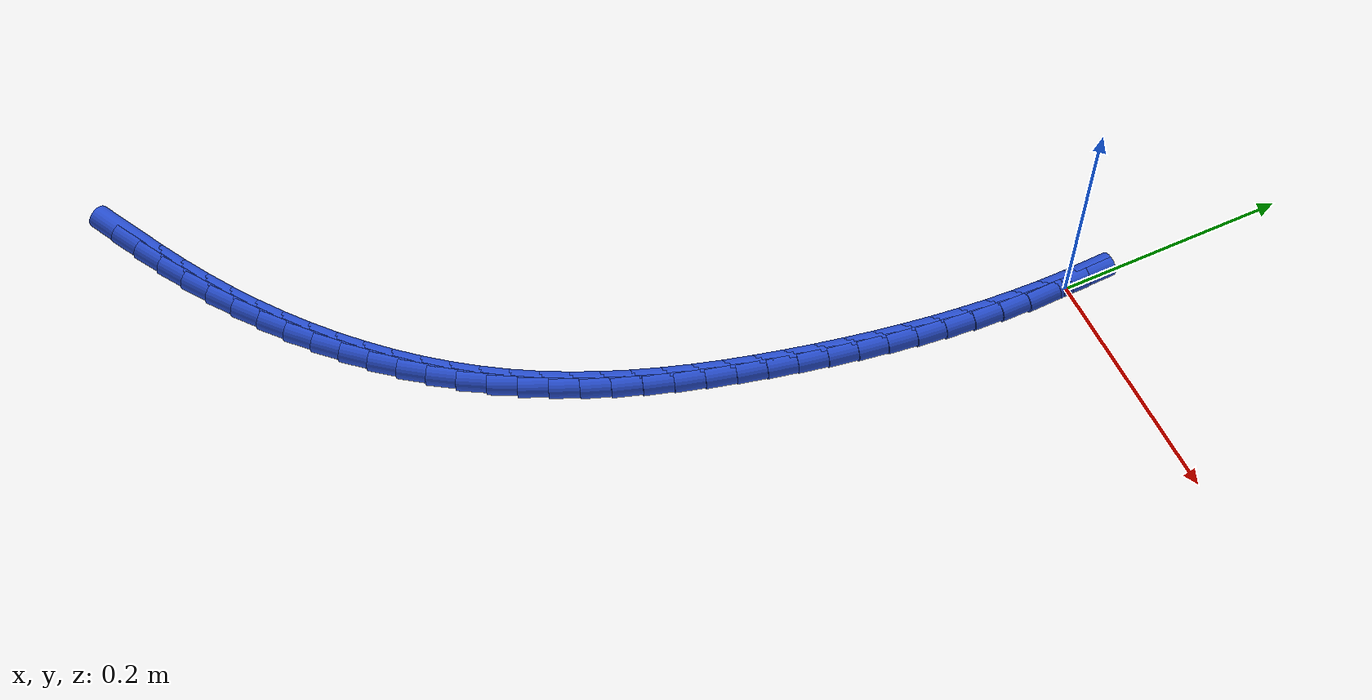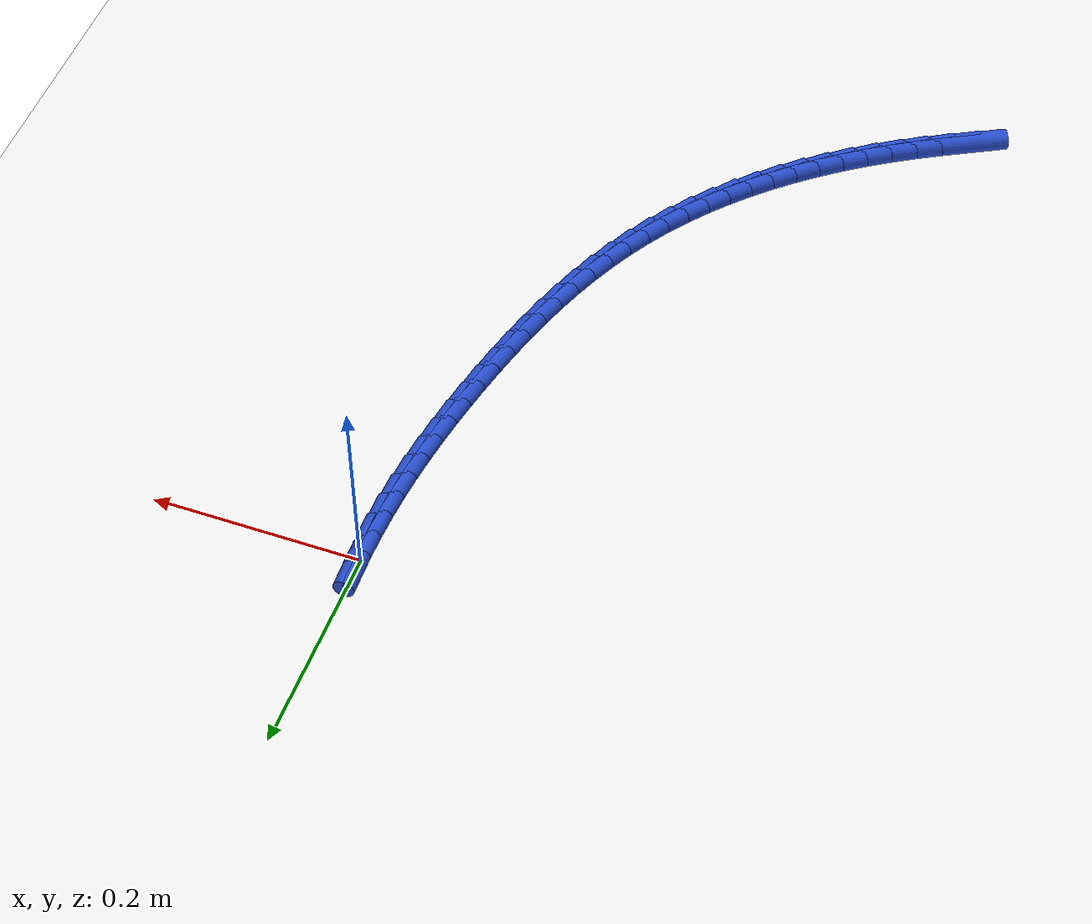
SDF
<sdf version="1.6">
 <world name="default">
  <model name="ground_plane">
   <static>1</static>
   <link name="link">
    <collision name="collision">
     <geometry><plane><normal>0 0 1</normal><size>100 100</size></plane></geometry>
     <surface><friction><ode><mu>100</mu><mu2>50</mu2></ode></friction></surface>
    </collision>
    <visual name="visual">
     <cast_shadows>0</cast_shadows>
     <geometry><plane><normal>0 0 1</normal><size>100 100</size></plane></geometry>
     <material>
      <script><uri>file://media/materials/scripts/gazebo.material</uri><name>Gazebo/WhiteGlow</name></script>
     </material>
    </visual>
   </link>
  </model>
  <model name="line">
   <link name="link_0">
    <pose>1.8214596497756474e-17 -6.938893903907228e-18 0.01 0 1.57 -1.5419551976238133</pose>
    <collision name="collision">
     <geometry><cylinder><radius>0.01</radius><length>0.08</length></cylinder></geometry>
    </collision>
    <visual name="visual">
     <material>
      <script><name>Gazebo/Blue</name><uri>file://media/materials/scripts/gazebo.material</uri></script>
     </material>
     <geometry><cylinder><radius>0.01</radius><length>0.08</length></cylinder></geometry>
    </visual>
   </link>
   <link name="link_247">
    <pose>-0.3640956190401858 -0.6725799509050597 0.01 0 1.57 0.4924783959523863</pose>
    <collision name="collision">
     <geometry><cylinder><radius>0.01</radius><length>0.08</length></cylinder></geometry>
    </collision>
    <visual name="visual">
     <material>
      <script><name>Gazebo/Blue</name><uri>file://media/materials/scripts/gazebo.material</uri></script>
     </material>
     <geometry><cylinder><radius>0.01</radius><length>0.08</length></cylinder></geometry>
    </visual>
   </link>
   <link name="link_248">
    <pose>-0.3412563538540837 -0.6603249522264003 0.01 0 1.57 0.5138105845849316</pose>
    <collision name="collision">
     <geometry><cylinder><radius>0.01</radius><length>0.08</length></cylinder></geometry>
    </collision>
    <visual name="visual">
     <material>
      <script><name>Gazebo/Blue</name><uri>file://media/materials/scripts/gazebo.material</uri></script>
     </material>
     <geometry><cylinder><radius>0.01</radius><length>0.08</length></cylinder></geometry>
    </visual>
   </link>
   <link name="link_249">
    <pose>-0.3187779759784823 -0.6476387789709215 0.01 0 1.57 0.5463178545306897</pose>
    <collision name="collision">
     <geometry><cylinder><radius>0.01</radius><length>0.08</length></cylinder></geometry>
    </collision>
    <visual name="visual">
     <material>
      <script><name>Gazebo/Blue</name><uri>file://media/materials/scripts/gazebo.material</uri></script>
     </material>
     <geometry><cylinder><radius>0.01</radius><length>0.08</length></cylinder></geometry>
    </visual>
   </link>
   <link name="link_250">
    <pose>-0.2969022138857935 -0.6343372142739998 0.01 0 1.57 0.5808138478914241</pose>
    <collision name="collision">
     <geometry><cylinder><radius>0.01</radius><length>0.08</length></cylinder></geometry>
    </collision>
    <visual name="visual">
     <material>
      <script><name>Gazebo/Blue</name><uri>file://media/materials/scripts/gazebo.material</uri></script>
     </material>
     <geometry><cylinder><radius>0.01</radius><length>0.08</length></cylinder></geometry>
    </visual>
   </link>
   <link name="link_251">
    <pose>-0.27567688332726925 -0.6204063451381924 0.01 0 1.57 0.6166120135587492</pose>
    <collision name="collision">
     <geometry><cylinder><radius>0.01</radius><length>0.08</length></cylinder></geometry>
    </collision>
    <visual name="visual">
     <material>
      <script><name>Gazebo/Blue</name><uri>file://media/materials/scripts/gazebo.material</uri></script>
     </material>
     <geometry><cylinder><radius>0.01</radius><length>0.08</length></cylinder></geometry>
    </visual>
   </link>
   <link name="link_252">
    <pose>-0.25513445437383114 -0.6058457359113743 0.01 0 1.57 0.6537662995634507</pose>
    <collision name="collision">
     <geometry><cylinder><radius>0.01</radius><length>0.08</length></cylinder></geometry>
    </collision>
    <visual name="visual">
     <material>
      <script><name>Gazebo/Blue</name><uri>file://media/materials/scripts/gazebo.material</uri></script>
     </material>
     <geometry><cylinder><radius>0.01</radius><length>0.08</length></cylinder></geometry>
    </visual>
   </link>
   <link name="link_253">
    <pose>-0.23530739709640314 -0.5906549509414213 0.01 0 1.57 0.6923222566971304</pose>
    <collision name="collision">
     <geometry><cylinder><radius>0.01</radius><length>0.08</length></cylinder></geometry>
    </collision>
    <visual name="visual">
     <material>
      <script><name>Gazebo/Blue</name><uri>file://media/materials/scripts/gazebo.material</uri></script>
     </material>
     <geometry><cylinder><radius>0.01</radius><length>0.08</length></cylinder></geometry>
    </visual>
   </link>
   <link name="link_254">
    <pose>-0.2162281815659068 -0.5748335545762084 0.01 0 1.57 0.7323145920313963</pose>
    <collision name="collision">
     <geometry><cylinder><radius>0.01</radius><length>0.08</length></cylinder></geometry>
    </collision>
    <visual name="visual">
     <material>
      <script><name>Gazebo/Blue</name><uri>file://media/materials/scripts/gazebo.material</uri></script>
     </material>
     <geometry><cylinder><radius>0.01</radius><length>0.08</length></cylinder></geometry>
    </visual>
   </link>
   <link name="link_255">
    <pose>-0.19792927785326467 -0.5583811111636112 0.01 0 1.57 0.7737644633935588</pose>
    <collision name="collision">
     <geometry><cylinder><radius>0.01</radius><length>0.08</length></cylinder></geometry>
    </collision>
    <visual name="visual">
     <material>
      <script><name>Gazebo/Blue</name><uri>file://media/materials/scripts/gazebo.material</uri></script>
     </material>
     <geometry><cylinder><radius>0.01</radius><length>0.08</length></cylinder></geometry>
    </visual>
   </link>
   <link name="link_256">
    <pose>-0.18044315602939898 -0.5412971850515046 0.01 0 1.57 0.8166765913309642</pose>
    <collision name="collision">
     <geometry><cylinder><radius>0.01</radius><length>0.08</length></cylinder></geometry>
    </collision>
    <visual name="visual">
     <material>
      <script><name>Gazebo/Blue</name><uri>file://media/materials/scripts/gazebo.material</uri></script>
     </material>
     <geometry><cylinder><radius>0.01</radius><length>0.08</length></cylinder></geometry>
    </visual>
   </link>
   <link name="link_257">
    <pose>-0.16380228616523226 -0.523581340587764 0.01 0 1.57 0.8610363081725191</pose>
    <collision name="collision">
     <geometry><cylinder><radius>0.01</radius><length>0.08</length></cylinder></geometry>
    </collision>
    <visual name="visual">
     <material>
      <script><name>Gazebo/Blue</name><uri>file://media/materials/scripts/gazebo.material</uri></script>
     </material>
     <geometry><cylinder><radius>0.01</radius><length>0.08</length></cylinder></geometry>
    </visual>
   </link>
   <link name="link_258">
    <pose>-0.14803913833168686 -0.5052331421202646 0.01 0 1.57 0.9068067110402529</pose>
    <collision name="collision">
     <geometry><cylinder><radius>0.01</radius><length>0.08</length></cylinder></geometry>
    </collision>
    <visual name="visual">
     <material>
      <script><name>Gazebo/Blue</name><uri>file://media/materials/scripts/gazebo.material</uri></script>
     </material>
     <geometry><cylinder><radius>0.01</radius><length>0.08</length></cylinder></geometry>
    </visual>
   </link>
   <link name="link_259">
    <pose>-0.13318618259968523 -0.4862521539968821 0.01 0 1.57 0.9539261317433209</pose>
    <collision name="collision">
     <geometry><cylinder><radius>0.01</radius><length>0.08</length></cylinder></geometry>
    </collision>
    <visual name="visual">
     <material>
      <script><name>Gazebo/Blue</name><uri>file://media/materials/scripts/gazebo.material</uri></script>
     </material>
     <geometry><cylinder><radius>0.01</radius><length>0.08</length></cylinder></geometry>
    </visual>
   </link>
   <link name="link_260">
    <pose>-0.11927588904014974 -0.4666379405654912 0.01 0 1.57 1.0023061735656469</pose>
    <collision name="collision">
     <geometry><cylinder><radius>0.01</radius><length>0.08</length></cylinder></geometry>
    </collision>
    <visual name="visual">
     <material>
      <script><name>Gazebo/Blue</name><uri>file://media/materials/scripts/gazebo.material</uri></script>
     </material>
     <geometry><cylinder><radius>0.01</radius><length>0.08</length></cylinder></geometry>
    </visual>
   </link>
   <link name="link_261">
    <pose>-0.10634072772400245 -0.446390066173967 0.01 0 1.57 1.0517794381787524</pose>
    <collision name="collision">
     <geometry><cylinder><radius>0.01</radius><length>0.08</length></cylinder></geometry>
    </collision>
    <visual name="visual">
     <material>
      <script><name>Gazebo/Blue</name><uri>file://media/materials/scripts/gazebo.material</uri></script>
     </material>
     <geometry><cylinder><radius>0.01</radius><length>0.08</length></cylinder></geometry>
    </visual>
   </link>
   <link name="link_262">
    <pose>-0.09441213092176891 -0.42550875808923144 0.01 0 1.57 1.1001969718789046</pose>
    <collision name="collision">
     <geometry><cylinder><radius>0.01</radius><length>0.08</length></cylinder></geometry>
    </collision>
    <visual name="visual">
     <material>
      <script><name>Gazebo/Blue</name><uri>file://media/materials/scripts/gazebo.material</uri></script>
     </material>
     <geometry><cylinder><radius>0.01</radius><length>0.08</length></cylinder></geometry>
    </visual>
   </link>
   <link name="link_263">
    <pose>-0.08348057359454342 -0.4040204060084215 0.01 0 1.57 1.1448539383018819</pose>
    <collision name="collision">
     <geometry><cylinder><radius>0.01</radius><length>0.08</length></cylinder></geometry>
    </collision>
    <visual name="visual">
     <material>
      <script><name>Gazebo/Blue</name><uri>file://media/materials/scripts/gazebo.material</uri></script>
     </material>
     <geometry><cylinder><radius>0.01</radius><length>0.08</length></cylinder></geometry>
    </visual>
   </link>
   <link name="link_264">
    <pose>-0.0734829684445512 -0.38198561376235235 0.01 0 1.57 1.1855889385916032</pose>
    <collision name="collision">
     <geometry><cylinder><radius>0.01</radius><length>0.08</length></cylinder></geometry>
    </collision>
    <visual name="visual">
     <material>
      <script><name>Gazebo/Blue</name><uri>file://media/materials/scripts/gazebo.material</uri></script>
     </material>
     <geometry><cylinder><radius>0.01</radius><length>0.08</length></cylinder></geometry>
    </visual>
   </link>
   <link name="link_265">
    <pose>-0.06435261235289963 -0.3594672948713418 0.01 0 1.57 1.2224727851457051</pose>
    <collision name="collision">
     <geometry><cylinder><radius>0.01</radius><length>0.08</length></cylinder></geometry>
    </collision>
    <visual name="visual">
     <material>
      <script><name>Gazebo/Blue</name><uri>file://media/materials/scripts/gazebo.material</uri></script>
     </material>
     <geometry><cylinder><radius>0.01</radius><length>0.08</length></cylinder></geometry>
    </visual>
   </link>
   <link name="link_266">
    <pose>-0.05602280220069625 -0.3365283628557083 0.01 0 1.57 1.2556111289829925</pose>
    <collision name="collision">
     <geometry><cylinder><radius>0.01</radius><length>0.08</length></cylinder></geometry>
    </collision>
    <visual name="visual">
     <material>
      <script><name>Gazebo/Blue</name><uri>file://media/materials/scripts/gazebo.material</uri></script>
     </material>
     <geometry><cylinder><radius>0.01</radius><length>0.08</length></cylinder></geometry>
    </visual>
   </link>
   <link name="link_267">
    <pose>-0.04842683486904852 -0.3132317312357698 0.01 0 1.57 1.285128221035159</pose>
    <collision name="collision">
     <geometry><cylinder><radius>0.01</radius><length>0.08</length></cylinder></geometry>
    </collision>
    <visual name="visual">
     <material>
      <script><name>Gazebo/Blue</name><uri>file://media/materials/scripts/gazebo.material</uri></script>
     </material>
     <geometry><cylinder><radius>0.01</radius><length>0.08</length></cylinder></geometry>
    </visual>
   </link>
   <link name="link_268">
    <pose>-0.04149800723906395 -0.2896403135318445 0.01 0 1.57 1.3111537752408418</pose>
    <collision name="collision">
     <geometry><cylinder><radius>0.01</radius><length>0.08</length></cylinder></geometry>
    </collision>
    <visual name="visual">
     <material>
      <script><name>Gazebo/Blue</name><uri>file://media/materials/scripts/gazebo.material</uri></script>
     </material>
     <geometry><cylinder><radius>0.01</radius><length>0.08</length></cylinder></geometry>
    </visual>
   </link>
   <link name="link_269">
    <pose>-0.03516961619185 -0.2658170232642505 0.01 0 1.57 1.3338126756724895</pose>
    <collision name="collision">
     <geometry><cylinder><radius>0.01</radius><length>0.08</length></cylinder></geometry>
    </collision>
    <visual name="visual">
     <material>
      <script><name>Gazebo/Blue</name><uri>file://media/materials/scripts/gazebo.material</uri></script>
     </material>
     <geometry><cylinder><radius>0.01</radius><length>0.08</length></cylinder></geometry>
    </visual>
   </link>
   <link name="link_270">
    <pose>-0.029374958608514003 -0.2418247739533052 0.01 0 1.57 1.3532231656531275</pose>
    <collision name="collision">
     <geometry><cylinder><radius>0.01</radius><length>0.08</length></cylinder></geometry>
    </collision>
    <visual name="visual">
     <material>
      <script><name>Gazebo/Blue</name><uri>file://media/materials/scripts/gazebo.material</uri></script>
     </material>
     <geometry><cylinder><radius>0.01</radius><length>0.08</length></cylinder></geometry>
    </visual>
   </link>
   <link name="link_271">
    <pose>-0.02404747143520526 -0.21772641407771318 0.01 0 1.57 1.3707919700168787</pose>
    <collision name="collision">
     <geometry><cylinder><radius>0.01</radius><length>0.08</length></cylinder></geometry>
    </collision>
    <visual name="visual">
     <material>
      <script><name>Gazebo/Blue</name><uri>file://media/materials/scripts/gazebo.material</uri></script>
     </material>
     <geometry><cylinder><radius>0.01</radius><length>0.08</length></cylinder></geometry>
    </visual>
   </link>
   <link name="link_272">
    <pose>-0.01915077189781963 -0.19357077738331205 0.01 0 1.57 1.389521192093672</pose>
    <collision name="collision">
     <geometry><cylinder><radius>0.01</radius><length>0.08</length></cylinder></geometry>
    </collision>
    <visual name="visual">
     <material>
      <script><name>Gazebo/Blue</name><uri>file://media/materials/scripts/gazebo.material</uri></script>
     </material>
     <geometry><cylinder><radius>0.01</radius><length>0.08</length></cylinder></geometry>
    </visual>
   </link>
   <link name="link_273">
    <pose>-0.014716053905876523 -0.16937531721864799 0.01 0 1.57 1.409854400854953</pose>
    <collision name="collision">
     <geometry><cylinder><radius>0.01</radius><length>0.08</length></cylinder></geometry>
    </collision>
    <visual name="visual">
     <material>
      <script><name>Gazebo/Blue</name><uri>file://media/materials/scripts/gazebo.material</uri></script>
     </material>
     <geometry><cylinder><radius>0.01</radius><length>0.08</length></cylinder></geometry>
    </visual>
   </link>
   <link name="link_274">
    <pose>-0.010783692325629918 -0.14515322359683255 0.01 0 1.57 1.4318357505639567</pose>
    <collision name="collision">
     <geometry><cylinder><radius>0.01</radius><length>0.08</length></cylinder></geometry>
    </collision>
    <visual name="visual">
     <material>
      <script><name>Gazebo/Blue</name><uri>file://media/materials/scripts/gazebo.material</uri></script>
     </material>
     <geometry><cylinder><radius>0.01</radius><length>0.08</length></cylinder></geometry>
    </visual>
   </link>
   <link name="link_275">
    <pose>-0.007394062023333803 -0.12091768653097708 0.01 0 1.57 1.4555090150060828</pose>
    <collision name="collision">
     <geometry><cylinder><radius>0.01</radius><length>0.08</length></cylinder></geometry>
    </collision>
    <visual name="visual">
     <material>
      <script><name>Gazebo/Blue</name><uri>file://media/materials/scripts/gazebo.material</uri></script>
     </material>
     <geometry><cylinder><radius>0.01</radius><length>0.08</length></cylinder></geometry>
    </visual>
   </link>
   <link name="link_276">
    <pose>-0.00458753786524216 -0.09668189603419307 0.01 0 1.57 1.4809158603236465</pose>
    <collision name="collision">
     <geometry><cylinder><radius>0.01</radius><length>0.08</length></cylinder></geometry>
    </collision>
    <visual name="visual">
     <material>
      <script><name>Gazebo/Blue</name><uri>file://media/materials/scripts/gazebo.material</uri></script>
     </material>
     <geometry><cylinder><radius>0.01</radius><length>0.08</length></cylinder></geometry>
    </visual>
   </link>
   <link name="link_277">
    <pose>-0.0024044947176089715 -0.07245904211959202 0.01 0 1.57 1.5080938059042865</pose>
    <collision name="collision">
     <geometry><cylinder><radius>0.01</radius><length>0.08</length></cylinder></geometry>
    </collision>
    <visual name="visual">
     <material>
      <script><name>Gazebo/Blue</name><uri>file://media/materials/scripts/gazebo.material</uri></script>
     </material>
     <geometry><cylinder><radius>0.01</radius><length>0.08</length></cylinder></geometry>
    </visual>
   </link>
   <link name="link_278">
    <pose>-0.0008853074466882243 -0.04826231480028531 0.01 0 1.57 1.5370738558705432</pose>
    <collision name="collision">
     <geometry><cylinder><radius>0.01</radius><length>0.08</length></cylinder></geometry>
    </collision>
    <visual name="visual">
     <material>
      <script><name>Gazebo/Blue</name><uri>file://media/materials/scripts/gazebo.material</uri></script>
     </material>
     <geometry><cylinder><radius>0.01</radius><length>0.08</length></cylinder></geometry>
    </visual>
   </link>
   <link name="link_279">
    <pose>-7.035091873388438e-05 -0.024104904089383705 0.01 0 1.57 1.5678778037122727</pose>
    <collision name="collision">
     <geometry><cylinder><radius>0.01</radius><length>0.08</length></cylinder></geometry>
    </collision>
    <visual name="visual">
     <material>
      <script><name>Gazebo/Blue</name><uri>file://media/materials/scripts/gazebo.material</uri></script>
     </material>
     <geometry><cylinder><radius>0.01</radius><length>0.08</length></cylinder></geometry>
    </visual>
   </link>
   <link name="link_280">
    <pose>9.540979117872439e-18 -1.3183898417423734e-16 0.01 0 1.57 -1.5410774121656745</pose>
    <collision name="collision">
     <geometry><cylinder><radius>0.01</radius><length>0.08</length></cylinder></geometry>
    </collision>
    <visual name="visual">
     <material>
      <script><name>Gazebo/Blue</name><uri>file://media/materials/scripts/gazebo.material</uri></script>
     </material>
     <geometry><cylinder><radius>0.01</radius><length>0.08</length></cylinder></geometry>
    </visual>
   </link>
  </model>
 </world>
</sdf>
